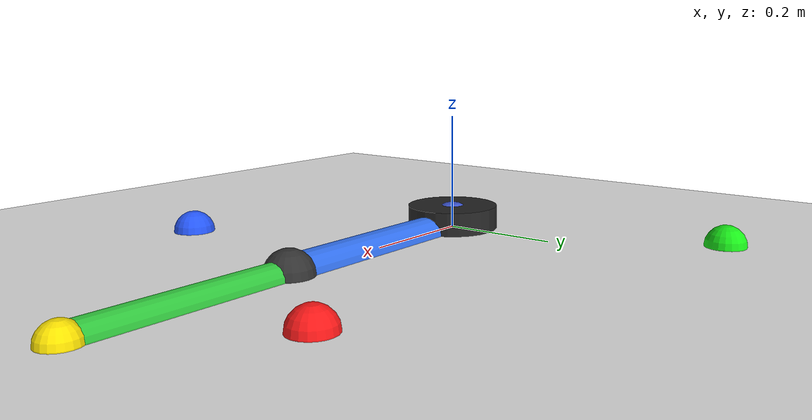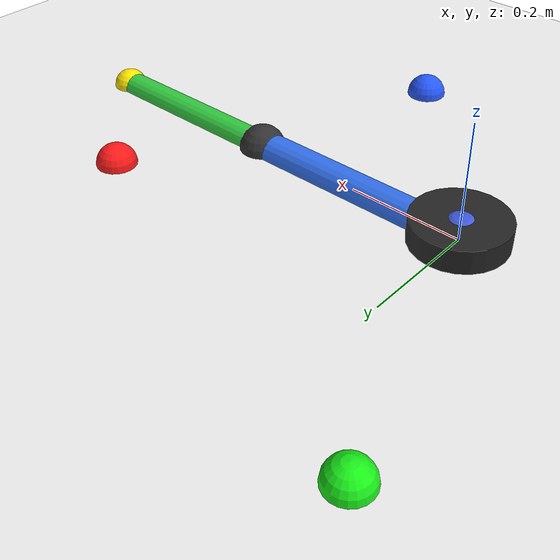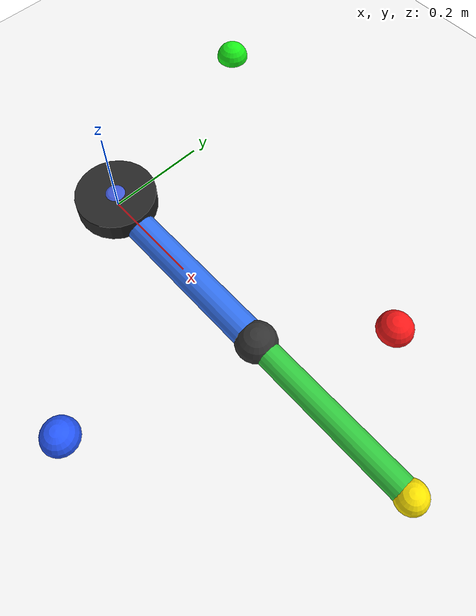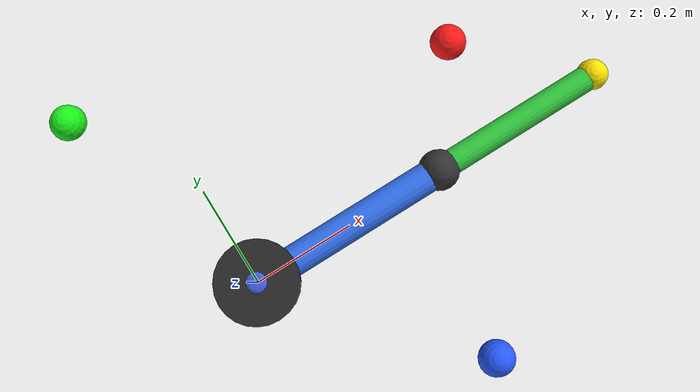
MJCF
<mujoco model="BrainInspiredManipulator">

    <!-- Physics -->

    <option timestep="0.002"
            gravity="0 0 0"
            integrator="RK4"/>

    <visual>

        <headlight diffuse="0.7 0.7 0.7"/>

    </visual>

    <worldbody>

        <!-- Lighting -->

        <light pos="0 0 2"/>

        <geom
            type="plane"
            size="4 4 0.1"
            rgba="0.95 0.95 0.95 1"/>

        <!-- Robot -->

        <body name="base"
              pos="0 0 0">

            <geom
                type="cylinder"
                size="0.08 0.04"
                rgba="0.15 0.15 0.15 1"/>

            <!-- Shoulder -->

            <joint
                name="shoulder"
                type="hinge"
                axis="0 0 1"
                damping="5"
                armature="0.02"
                frictionloss="0.2"/>

            <geom
                type="sphere"
                size="0.045"
                rgba="0.25 0.35 0.85 1"/>

            <!-- Upper Arm -->

            <geom
                type="capsule"
                fromto="0 0 0 0.40 0 0"
                size="0.030"
                mass="0.80"
                rgba="0.20 0.45 0.95 1"/>

            <!-- Forearm -->

            <body name="forearm"
                  pos="0.40 0 0">

                <joint
                    name="elbow"
                    type="hinge"
                    axis="0 0 1"
                    damping="4"
                    armature="0.015"
                    frictionloss="0.15"/>

                <geom
                    type="sphere"
                    size="0.04"
                    rgba="0.20 0.20 0.20 1"/>

                <geom
                    type="capsule"
                    fromto="0 0 0 0.35 0 0"
                    size="0.025"
                    mass="0.60"
                    rgba="0.20 0.80 0.25 1"/>

                <!-- Hand -->

                <geom
                    type="sphere"
                    pos="0.35 0 0"
                    size="0.03"
                    rgba="1.0 0.90 0.0 1"/>

                <site
                    name="hand"
                    pos="0.35 0 0"
                    size="0.012"
                    rgba="1 1 0 1"/>

            </body>

        </body>

        <!-- Dynamic Targets -->

        <!-- RED -->

        <body name="red_target"
              pos="0.55 0.20 0">

            <joint
                name="red_x"
                type="slide"
                axis="1 0 0"
                damping="1"
                armature="0.001"
                range="-0.25 0.25"/>

            <joint
                name="red_y"
                type="slide"
                axis="0 1 0"
                damping="1"
                armature="0.001"
                range="-0.25 0.25"/>

            <geom
                type="sphere"
                size="0.035"
                mass="0.01"
                rgba="1 0.1 0.1 1"
                contype="0"
                conaffinity="0"/>

            <site
                name="target_red"
                pos="0 0 0"
                size="0.016"
                rgba="1 0 0 1"/>

        </body>

        <!-- GREEN -->

        <body name="green_target"
              pos="-0.15 0.45 0">

            <joint
                name="green_x"
                type="slide"
                axis="1 0 0"
                damping="1"
                armature="0.001"
                range="-0.25 0.25"/>

            <joint
                name="green_y"
                type="slide"
                axis="0 1 0"
                damping="1"
                armature="0.001"
                range="-0.25 0.25"/>

            <geom
                type="sphere"
                size="0.035"
                mass="0.01"
                rgba="0.1 0.95 0.1 1"
                contype="0"
                conaffinity="0"/>

            <site
                name="target_green"
                pos="0 0 0"
                size="0.016"
                rgba="0 1 0 1"/>

        </body>

        <!-- BLUE -->

        <body name="blue_target"
              pos="0.30 -0.35 0">

            <joint
                name="blue_x"
                type="slide"
                axis="1 0 0"
                damping="1"
                armature="0.001"
                range="-0.25 0.25"/>

            <joint
                name="blue_y"
                type="slide"
                axis="0 1 0"
                damping="1"
                armature="0.001"
                range="-0.25 0.25"/>

            <geom
                type="sphere"
                size="0.035"
                mass="0.01"
                rgba="0.15 0.35 1 1"
                contype="0"
                conaffinity="0"/>

            <site
                name="target_blue"
                pos="0 0 0"
                size="0.016"
                rgba="0 0 1 1"/>

        </body>

    </worldbody>

    <!-- Actuators -->

    <actuator>

        <motor
            name="shoulder_motor"
            joint="shoulder"
            gear="450"
            ctrllimited="true"
            ctrlrange="-2 2"/>

        <motor
            name="elbow_motor"
            joint="elbow"
            gear="350"
            ctrllimited="true"
            ctrlrange="-2 2"/>

    </actuator>

</mujoco>
